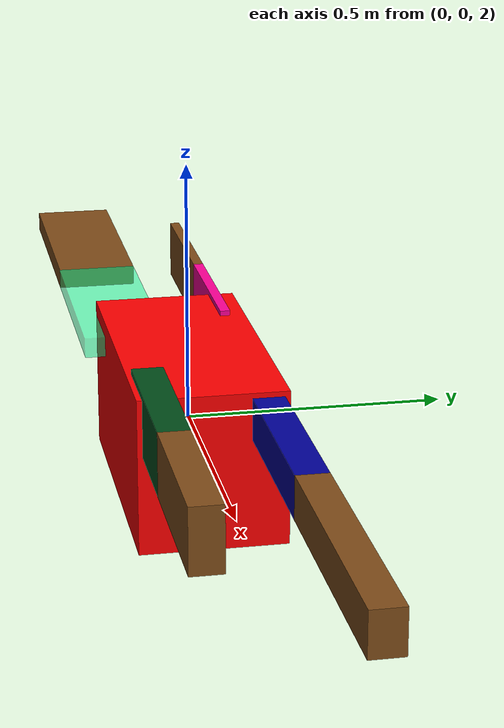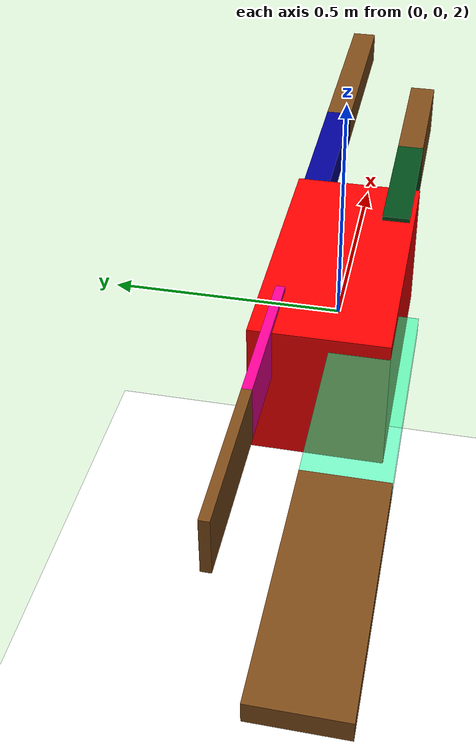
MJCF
<mujoco>
    <option gravity="0 0 -50.81" />
    <worldbody>
        <light diffuse="0.8 0.8 0.8" pos="0 0 8" dir="0 0 -1" />
        <geom type="plane" size="3 3 0.1" rgba="1 1 1 1" />

        <body name="main_body" pos="0 0 2">
            <joint name="main_body" type="free" />
            <geom type="box" size="0.15 0.29 0.14" rgba="1 0 0 1" euler="90 0 90" mass="40" />

            <body name="leg1" pos="-0.38 -0.1 0.1" euler="0 90 0">
                <joint name="leg1-1" pos="0 0 0.23" type="hinge" axis="0 1 0" range="-45 45" />
                <geom type="box" size="0.02 0.08 0.23" rgba="0 1 0.6 0.5" mass="10" />
                <body name="shank1" pos="0 0 -0.46">
                    <joint name="leg1-2" pos="0 0 0.23" type="hinge" axis="0 1 0" range="-90 -70" />
                    <geom type="box" size="0.02 0.08 0.23" rgba="0.5 0.3 0.1 1" mass="30" />
                </body>
            </body>

            <body name="leg2" pos="-0.31 0.1 0.1" euler="0 90 0">
                <joint name="leg2-1" pos="0 0 0.16" type="hinge" axis="0 1 0" range="-45 45" />
                <geom type="box" size="0.06 0.01 0.16" rgba="1 0 0.6 1" mass="10" />
                <body name="shank2" pos="0 0 -0.32">
                    <joint name="leg2-2" pos="0 0 0.16" type="hinge" axis="0 1 0" range="-90 -70" />
                    <geom type="box" size="0.06 0.01 0.16" rgba="0.5 0.3 0.1 1" mass="30" />
                </body>
            </body>

            <body name="leg3" pos="0.31 -0.1 0.1" euler="0 -90 0">
                <joint name="leg3-1" pos="0 0 0.16" type="hinge" axis="0 1 0" range="-45 45" />
                <geom type="box" size="0.06 0.03 0.16" rgba="0 0.3 0.1 1" mass="10" />
                <body name="shank3" pos="0 0 -0.32">
                    <joint name="leg3-2" pos="0 0 0.16" type="hinge" axis="0 1 0" range="70 90" />
                    <geom type="box" size="0.06 0.03 0.16" rgba="0.5 0.3 0.1 1" mass="30" />
                </body>
            </body>

            <body name="leg4" pos="0.4 0.1 0.1" euler="0 -90 0">
                <joint name="leg4-1" pos="0 0 0.25" type="hinge" axis="0 1 0" range="-45 45" />
                <geom type="box" size="0.04 0.03 0.25" rgba="0 0 0.6 1" mass="10" />
                <body name="shank4" pos="0 0 -0.5">
                    <joint name="leg4-2" pos="0 0 0.25" type="hinge" axis="0 1 0" range="70 90" />
                    <geom type="box" size="0.04 0.03 0.25" rgba="0.5 0.3 0.1 1" mass="30" />
                </body>
            </body>
        </body>

    </worldbody>
    <actuator>
        <motor joint="leg1-1" name="fl1j" />
        <motor joint="leg1-2" name="fl2j" />
        <motor joint="leg3-1" name="bl1j" />
        <motor joint="leg3-2" name="bl2j" />
        <motor joint="leg2-1" name="fr1j" />
        <motor joint="leg2-2" name="fr2j" />
        <motor joint="leg4-1" name="br1j" />
        <motor joint="leg4-2" name="br2j" />
    </actuator>
</mujoco>
